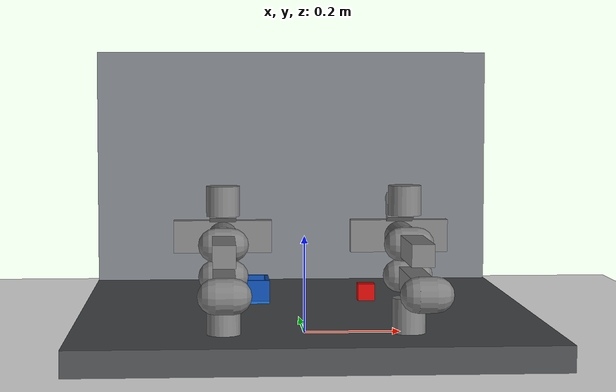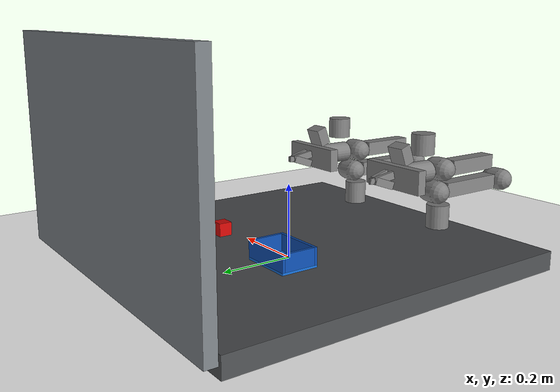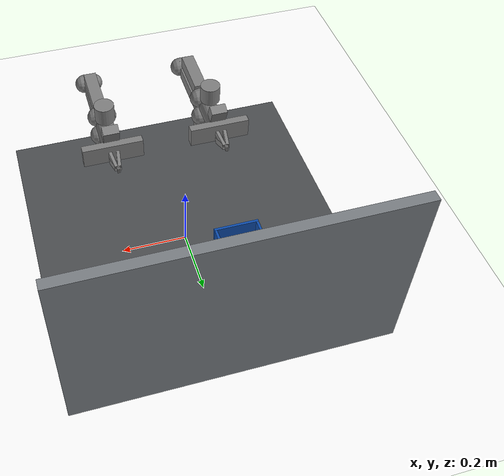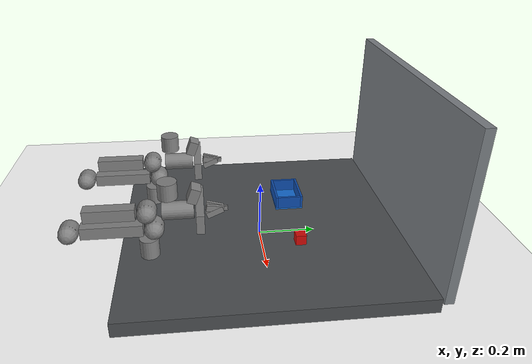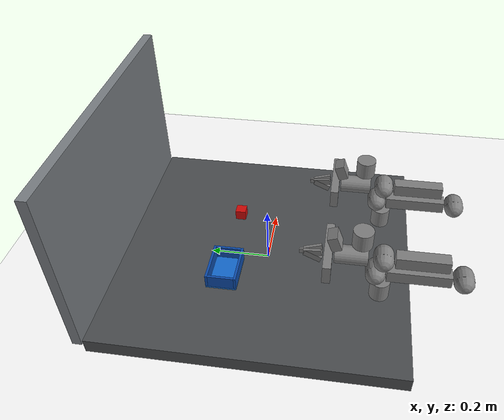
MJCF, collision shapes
<mujoco model="glassego block jamming wxai">
  <compiler angle="radian" meshdir="/home/huasan/trossen_arm_mujoco/trossen_arm_mujoco/assets/meshes/" texturedir="/home/huasan/trossen_arm_mujoco/trossen_arm_mujoco/assets/"/>

  <option integrator="implicitfast"/>

  <visual>
    <headlight diffuse="0.55 0.58 0.62" ambient="0.38 0.38 0.4" specular="0.12 0.12 0.12"/>
    <rgba haze="0.12 0.14 0.16 1"/>
    <quality shadowsize="4096"/>
  </visual>

  <size nkey="2"/>

  <statistic extent="0.8" center="0 -0.12 0.18"/>

  <default>
    <default class="left_main">
      <default class="left_visual">
        <geom type="mesh" contype="0" conaffinity="0" group="2" material="trossen_black"/>
      </default>
      <default class="left_collision">
        <geom type="cylinder" group="3"/>
      </default>
    </default>
    <default class="right_main">
      <default class="right_visual">
        <geom type="mesh" contype="0" conaffinity="0" group="2" material="trossen_black"/>
      </default>
      <default class="right_collision">
        <geom type="cylinder" group="3"/>
      </default>
    </default>
  </default>

  <asset>
    <texture type="skybox" colorspace="auto" name="task_skybox" builtin="gradient" rgb1="0.78 0.8 0.82" rgb2="0.3 0.32 0.35" width="512" height="3072"/>
    <texture type="2d" colorspace="auto" name="floor_grid" builtin="checker" mark="edge" rgb1="0.38 0.4 0.42" rgb2="0.3 0.32 0.34" markrgb="0.48 0.5 0.52" width="300" height="300"/>
    <texture type="2d" colorspace="auto" name="tabletop_gray_matte" builtin="checker" rgb1="0.28 0.29 0.30" rgb2="0.31 0.32 0.33" markrgb="0.32 0.33 0.34" width="256" height="256"/>
    <material name="floor_grid" texrepeat="4 4" texuniform="true" reflectance="0.08"/>
    <material name="task_table_gray_matte" texture="tabletop_gray_matte" texrepeat="12 12" texuniform="true" reflectance="0.01"/>
    <material name="backboard" rgba="0.48 0.5 0.52 1" reflectance="0.05"/>
    <material name="tray_blue" rgba="0.08 0.42 0.82 0.88" reflectance="0.06"/>
    <material name="tray_blue_rim" rgba="0.05 0.30 0.68 0.96" reflectance="0.05"/>
    <material name="block_red" rgba="0.82 0.035 0.025 1" reflectance="0.04"/>
    <material name="left_trossen_black" rgba="0.1 0.1 0.1 1"/>
    <material name="right_trossen_black" rgba="0.1 0.1 0.1 1"/>
    <mesh name="left_base_link" content_type="model/stl" file="base_link.stl"/>
    <mesh name="left_link_1" content_type="model/stl" file="link_1.stl"/>
    <mesh name="left_link_2" content_type="model/stl" file="link_2.stl"/>
    <mesh name="left_link_3" content_type="model/stl" file="link_3.stl"/>
    <mesh name="left_link_4" content_type="model/stl" file="link_4.stl"/>
    <mesh name="left_link_5" content_type="model/stl" file="link_5.stl"/>
    <mesh name="left_link_6" content_type="model/stl" file="link_6.stl"/>
    <mesh name="left_carriage_right" content_type="model/stl" file="carriage_right.stl"/>
    <mesh name="left_carriage_left" content_type="model/stl" file="carriage_left.stl"/>
    <mesh name="left_camera_mount_d405" content_type="model/stl" file="camera_mount_d405.stl"/>
    <mesh name="left_d405" content_type="model/stl" file="d405.stl" scale="0.001 0.001 0.001"/>
    <mesh name="left_gripper_left" content_type="model/stl" file="gripper_left.stl"/>
    <mesh name="left_gripper_right" content_type="model/stl" file="gripper_right.stl"/>
    <mesh name="right_base_link" file="base_link.stl"/>
    <mesh name="right_link_1" file="link_1.stl"/>
    <mesh name="right_link_2" file="link_2.stl"/>
    <mesh name="right_link_3" file="link_3.stl"/>
    <mesh name="right_link_4" content_type="model/stl" file="link_4.stl"/>
    <mesh name="right_link_5" content_type="model/stl" file="link_5.stl"/>
    <mesh name="right_link_6" content_type="model/stl" file="link_6.stl"/>
    <mesh name="right_carriage_right" file="carriage_right.stl"/>
    <mesh name="right_carriage_left" content_type="model/stl" file="carriage_left.stl"/>
    <mesh name="right_camera_mount_d405" content_type="model/stl" file="camera_mount_d405.stl"/>
    <mesh name="right_d405" content_type="model/stl" file="d405.stl" scale="0.001 0.001 0.001"/>
    <mesh name="right_gripper_left" content_type="model/stl" file="gripper_left.stl"/>
    <mesh name="right_gripper_right" file="gripper_right.stl"/>
  </asset>

  <worldbody>
    <geom name="floor" size="0 0 0.05" type="plane" material="floor_grid"/>
    <geom name="task_table" size="0.46 0.48 0.025" pos="0 0 0.025" type="box" friction="1.2 0.02 0.001" material="task_table_gray_matte"/>
    <geom name="task_backboard" size="0.46 0.015 0.28" pos="0 0.5 0.31" type="box" material="backboard" contype="0" conaffinity="0"/>
    <camera name="ego_rgbd" quat="0.86553 0.500857 0 0" pos="0 -0.7 0.5" fovy="60"/>
    <camera name="task_overview" quat="0.818156 0.468606 0.165609 0.289142" pos="0.58 -0.72 0.55" fovy="48"/>
    <light name="task_key_light" pos="0 -0.25 1.25" dir="0 0.12 -0.99" diffuse="0.75 0.72 0.66" specular="0.2 0.2 0.2" directional="false"/>
    <light name="task_fill_light" pos="-0.45 -0.05 0.75" dir="0.35 0.1 -0.92" diffuse="0.38 0.42 0.5" specular="0.05 0.05 0.05" directional="false"/>
    <light name="task_back_light" pos="0.25 0.38 0.9" dir="-0.2 -0.35 -0.91" diffuse="0.28 0.3 0.34" specular="0.04 0.04 0.04" directional="false"/>
    <frame name="left_wxai_mount">
      <body name="left_base_link" pos="-0.17 -0.38 0.06" quat="0.707107 0 0 0.707107" gravcomp="1">
        <inertial pos="-0.00014175 -5.228e-05 0.0317518" quat="0.503748 -0.50738 -0.49423 -0.49451" mass="0.459699" diaginertia="0.000213926 0.000416701 0.000448963"/>
        <geom class="left_visual" material="left_trossen_black" mesh="left_base_link"/>
        <geom class="left_collision" size="0.031 0.0325" pos="0 0 0.0325"/>
        <body name="left_link_1" pos="0 0 0.05725" gravcomp="1">
          <inertial pos="-0.00011075 0.00171176 0.0204459" quat="0.313955 0.305238 -0.643575 0.627752" mass="0.152704" diaginertia="0.000203432 0.000173907 8.3521e-05"/>
          <joint name="left_joint_0" range="-3.05433 3.05433" actuatorgravcomp="true" armature="0.032" frictionloss="0.1"/>
          <geom class="left_visual" material="left_trossen_black" mesh="left_link_1"/>
          <body name="left_link_2" pos="0.02 0 0.04625" gravcomp="1">
            <inertial pos="-0.131215 -0.00292583 0.00021345" quat="-0.00123582 0.706546 -0.00109575 0.707665" mass="1.15316" diaginertia="0.0179449 0.0173612 0.00102628"/>
            <joint name="left_joint_1" range="0 3.14159" actuatorgravcomp="true" armature="0.032" frictionloss="0.1" axis="0 1 0"/>
            <geom class="left_visual" material="left_trossen_black" mesh="left_link_2"/>
            <geom class="left_collision" size="0.031 0.015" quat="0.707107 0.707107 0 0" type="capsule"/>
            <geom class="left_collision" size="0.0975 0.02 0.02" pos="-0.131 0 0" type="box"/>
            <body name="left_link_3" pos="-0.264 0 0" gravcomp="1">
              <inertial pos="0.180836 -0.0009409 0.0555494" quat="0.0103901 0.669684 -0.0033175 0.742566" mass="0.686666" diaginertia="0.00566898 0.00547578 0.00059316"/>
              <joint name="left_joint_2" range="0 2.35619" actuatorgravcomp="true" armature="0.032" frictionloss="0.1" axis="0 -1 0"/>
              <geom class="left_visual" material="left_trossen_black" mesh="left_link_3"/>
              <geom class="left_collision" size="0.031 0.015" quat="0.707107 0.707107 0 0" type="capsule"/>
              <geom class="left_collision" size="0.08 0.02 0.02" pos="0.13 0 0.06" type="box"/>
              <body name="left_link_4" pos="0.245 0 0.06" gravcomp="1">
                <inertial pos="0.0579784 0.00027145 0.0588445" quat="0.948688 0.0346237 0.307828 0.0635164" mass="0.457899" diaginertia="0.000670827 0.000661455 0.000288648"/>
                <joint name="left_joint_3" range="-1.5708 1.5708" actuatorgravcomp="true" armature="0.0018" frictionloss="0.1" axis="0 -1 0"/>
                <geom class="left_visual" material="left_trossen_black" mesh="left_link_4"/>
                <geom class="left_collision" size="0.031 0.015" quat="0.707107 0.707107 0 0" type="capsule"/>
                <body name="left_link_5" pos="0.06775 0 0.0455" gravcomp="1">
                  <inertial pos="0.00412447 -1.138e-05 -0.0428318" quat="0.496144 0.502128 0.503595 0.498098" mass="0.366939" diaginertia="0.000320622 0.00026751 0.000189108"/>
                  <joint name="left_joint_4" range="-1.5708 1.5708" actuatorgravcomp="true" armature="0.0018" frictionloss="0.1" axis="0 0 -1"/>
                  <geom class="left_visual" material="left_trossen_black" mesh="left_link_5"/>
                  <geom class="left_collision" size="0.031 0.028" pos="0 0 0.03"/>
                  <body name="left_link_6" pos="0.02895 0 -0.0455" gravcomp="1">
                    <inertial pos="0.046841 0.00145133 0.00895674" quat="0.275854 0.291255 -0.691957 0.600225" mass="0.671874" diaginertia="0.00118316 0.00110863 0.00078309"/>
                    <joint name="left_joint_5" range="-3.14159 3.14159" actuatorgravcomp="true" armature="0.0018" frictionloss="0.1" axis="1 0 0"/>
                    <geom class="left_visual" material="left_trossen_black" mesh="left_link_6"/>
                    <geom class="left_collision" size="0.029 0.05" quat="0.707107 0 0.707107 0"/>
                    <geom class="left_collision" size="0.0125 0.094 0.031" pos="0.0685 0 0" type="box"/>
                    <geom class="left_visual" pos="0.012 0 0" quat="1 0 0 0" material="left_trossen_black" mesh="left_camera_mount_d405"/>
                    <geom class="left_collision" size="0.0155 0.025 0.025" pos="0.0513206 0 0.0569399" quat="0.984808 0 0.173648 0" type="box"/>
                    <geom class="left_visual" size="0.0115 0.021 0.021" pos="0.0513206 0 0.0569399" quat="0.984808 0 0.173648 0" type="box" material="left_trossen_black"/>
                    <site name="left_ee_site" size="0.001" pos="0.156 0 0"/>
                    <site name="left_camera_color_frame" quat="0.984808 0 0.173648 0" pos="0.05864 0.009 0.05427"/>
                    <camera name="left_cam" quat="0.579242 0.40556 -0.40556 -0.579242" pos="0.05864 0.009 0.05427" fovy="87"/>
                    <body name="left_carriage_right" pos="0.0865 -0.023 0" gravcomp="1">
                      <inertial pos="0.00169015 0.00592793 0.00201817" quat="-0.370973 0.740886 -0.0847721 0.553427" mass="0.081271" diaginertia="4.29565e-05 3.87081e-05 2.21528e-05"/>
                      <joint name="left_right_carriage_joint" type="slide" range="0 0.044" actuatorgravcomp="true" armature="0.1" frictionloss="0.1" axis="0 -1 0"/>
                      <geom class="left_visual" material="left_trossen_black" mesh="left_carriage_right"/>
                      <geom class="left_visual" material="left_trossen_black" mesh="left_gripper_right"/>
                      <geom class="left_collision" size="0.0275 0.005 0.01" pos="0.0286 0.01436 0.0037" quat="0.99257 -0.00451 0.10246 0.06547" type="box"/>
                      <geom class="left_collision" size="0.0275 0.005 0.01" pos="0.0285 0.01429 -0.00973" quat="0.98344 0.0133 -0.16893 0.06427" type="box"/>
                      <geom class="left_collision" size="0.00732 0.00214 0.00767" pos="0.0622 0.02083 -0.00105" type="box"/>
                    </body>
                    <body name="left_carriage_left" pos="0.0865 0.023 0" gravcomp="1">
                      <inertial pos="0.00169017 -0.00592796 -0.00365701" quat="-0.0382691 0.628022 -0.255101 0.734198" mass="0.081271" diaginertia="4.21112e-05 3.61943e-05 2.40003e-05"/>
                      <joint name="left_left_carriage_joint" type="slide" range="0 0.044" actuatorgravcomp="true" armature="0.1" frictionloss="0.1" axis="0 1 0"/>
                      <geom class="left_visual" material="left_trossen_black" mesh="left_carriage_left"/>
                      <geom class="left_visual" material="left_trossen_black" mesh="left_gripper_left"/>
                      <geom class="left_collision" size="0.0275 0.005 0.01" pos="0.0286 -0.01436 0.0037" quat="0.99257 0.00451 0.10246 -0.06547" type="box"/>
                      <geom class="left_collision" size="0.0275 0.005 0.01" pos="0.0285 -0.01429 -0.00973" quat="0.98344 -0.0133 -0.16893 -0.06427" type="box"/>
                      <geom class="left_collision" size="0.00732 0.00214 0.00767" pos="0.0622 -0.02083 -0.00105" type="box"/>
                    </body>
                  </body>
                </body>
              </body>
            </body>
          </body>
        </body>
      </body>
    </frame>
    <frame name="right_wxai_mount">
      <body name="right_base_link" pos="0.17 -0.38 0.06" quat="0.707107 0 0 0.707107" gravcomp="1">
        <inertial pos="-0.00014175 -5.228e-05 0.0317518" quat="0.503748 -0.50738 -0.49423 -0.49451" mass="0.459699" diaginertia="0.000213926 0.000416701 0.000448963"/>
        <geom class="right_visual" material="right_trossen_black" mesh="right_base_link"/>
        <geom class="right_collision" size="0.031 0.0325" pos="0 0 0.0325"/>
        <body name="right_link_1" pos="0 0 0.05725" gravcomp="1">
          <inertial pos="-0.00011075 0.00171176 0.0204459" quat="0.313955 0.305238 -0.643575 0.627752" mass="0.152704" diaginertia="0.000203432 0.000173907 8.3521e-05"/>
          <joint name="right_joint_0" range="-3.05433 3.05433" actuatorgravcomp="true" armature="0.032" frictionloss="0.1"/>
          <geom class="right_visual" material="right_trossen_black" mesh="right_link_1"/>
          <body name="right_link_2" pos="0.02 0 0.04625" gravcomp="1">
            <inertial pos="-0.131215 -0.00292583 0.00021345" quat="-0.00123582 0.706546 -0.00109575 0.707665" mass="1.15316" diaginertia="0.0179449 0.0173612 0.00102628"/>
            <joint name="right_joint_1" range="0 3.14159" actuatorgravcomp="true" armature="0.032" frictionloss="0.1" axis="0 1 0"/>
            <geom class="right_visual" material="right_trossen_black" mesh="right_link_2"/>
            <geom class="right_collision" size="0.031 0.015" quat="0.707107 0.707107 0 0" type="capsule"/>
            <geom class="right_collision" size="0.0975 0.02 0.02" pos="-0.131 0 0" type="box"/>
            <body name="right_link_3" pos="-0.264 0 0" gravcomp="1">
              <inertial pos="0.180836 -0.0009409 0.0555494" quat="0.0103901 0.669684 -0.0033175 0.742566" mass="0.686666" diaginertia="0.00566898 0.00547578 0.00059316"/>
              <joint name="right_joint_2" range="0 2.35619" actuatorgravcomp="true" armature="0.032" frictionloss="0.1" axis="0 -1 0"/>
              <geom class="right_visual" material="right_trossen_black" mesh="right_link_3"/>
              <geom class="right_collision" size="0.031 0.015" quat="0.707107 0.707107 0 0" type="capsule"/>
              <geom class="right_collision" size="0.08 0.02 0.02" pos="0.13 0 0.06" type="box"/>
              <body name="right_link_4" pos="0.245 0 0.06" gravcomp="1">
                <inertial pos="0.0579784 0.00027145 0.0588445" quat="0.948688 0.0346237 0.307828 0.0635164" mass="0.457899" diaginertia="0.000670827 0.000661455 0.000288648"/>
                <joint name="right_joint_3" range="-1.5708 1.5708" actuatorgravcomp="true" armature="0.0018" frictionloss="0.1" axis="0 -1 0"/>
                <geom class="right_visual" material="right_trossen_black" mesh="right_link_4"/>
                <geom class="right_collision" size="0.031 0.015" quat="0.707107 0.707107 0 0" type="capsule"/>
                <body name="right_link_5" pos="0.06775 0 0.0455" gravcomp="1">
                  <inertial pos="0.00412447 -1.138e-05 -0.0428318" quat="0.496144 0.502128 0.503595 0.498098" mass="0.366939" diaginertia="0.000320622 0.00026751 0.000189108"/>
                  <joint name="right_joint_4" range="-1.5708 1.5708" actuatorgravcomp="true" armature="0.0018" frictionloss="0.1" axis="0 0 -1"/>
                  <geom class="right_visual" material="right_trossen_black" mesh="right_link_5"/>
                  <geom class="right_collision" size="0.031 0.028" pos="0 0 0.03"/>
                  <body name="right_link_6" pos="0.02895 0 -0.0455" gravcomp="1">
                    <inertial pos="0.046841 0.00145133 0.00895674" quat="0.275854 0.291255 -0.691957 0.600225" mass="0.671874" diaginertia="0.00118316 0.00110863 0.00078309"/>
                    <joint name="right_joint_5" range="-3.14159 3.14159" actuatorgravcomp="true" armature="0.0018" frictionloss="0.1" axis="1 0 0"/>
                    <geom class="right_visual" material="right_trossen_black" mesh="right_link_6"/>
                    <geom class="right_collision" size="0.029 0.05" quat="0.707107 0 0.707107 0"/>
                    <geom class="right_collision" size="0.0125 0.094 0.031" pos="0.0685 0 0" type="box"/>
                    <geom class="right_visual" pos="0.012 0 0" quat="1 0 0 0" material="right_trossen_black" mesh="right_camera_mount_d405"/>
                    <geom class="right_collision" size="0.0155 0.025 0.025" pos="0.0513206 0 0.0569399" quat="0.984808 0 0.173648 0" type="box"/>
                    <geom class="right_visual" size="0.0115 0.021 0.021" pos="0.0513206 0 0.0569399" quat="0.984808 0 0.173648 0" type="box" material="right_trossen_black"/>
                    <site name="right_ee_site" size="0.001" pos="0.156 0 0"/>
                    <site name="right_camera_color_frame" quat="0.984808 0 0.173648 0" pos="0.05864 0.009 0.05427"/>
                    <camera name="right_cam" quat="0.579242 0.40556 -0.40556 -0.579242" pos="0.05864 0.009 0.05427" fovy="87"/>
                    <body name="right_carriage_right" pos="0.0865 -0.023 0" gravcomp="1">
                      <inertial pos="0.00169015 0.00592793 0.00201817" quat="-0.370973 0.740886 -0.0847721 0.553427" mass="0.081271" diaginertia="4.29565e-05 3.87081e-05 2.21528e-05"/>
                      <joint name="right_right_carriage_joint" type="slide" range="0 0.044" actuatorgravcomp="true" armature="0.1" frictionloss="0.1" axis="0 -1 0"/>
                      <geom class="right_visual" material="right_trossen_black" mesh="right_carriage_right"/>
                      <geom class="right_visual" material="right_trossen_black" mesh="right_gripper_right"/>
                      <geom class="right_collision" size="0.0275 0.005 0.01" pos="0.0286 0.01436 0.0037" quat="0.99257 -0.00451 0.10246 0.06547" type="box"/>
                      <geom class="right_collision" size="0.0275 0.005 0.01" pos="0.0285 0.01429 -0.00973" quat="0.98344 0.0133 -0.16893 0.06427" type="box"/>
                      <geom class="right_collision" size="0.00732 0.00214 0.00767" pos="0.0622 0.02083 -0.00105" type="box"/>
                    </body>
                    <body name="right_carriage_left" pos="0.0865 0.023 0" gravcomp="1">
                      <inertial pos="0.00169017 -0.00592796 -0.00365701" quat="-0.0382691 0.628022 -0.255101 0.734198" mass="0.081271" diaginertia="4.21112e-05 3.61943e-05 2.40003e-05"/>
                      <joint name="right_left_carriage_joint" type="slide" range="0 0.044" actuatorgravcomp="true" armature="0.1" frictionloss="0.1" axis="0 1 0"/>
                      <geom class="right_visual" material="right_trossen_black" mesh="right_carriage_left"/>
                      <geom class="right_visual" material="right_trossen_black" mesh="right_gripper_left"/>
                      <geom class="right_collision" size="0.0275 0.005 0.01" pos="0.0286 -0.01436 0.0037" quat="0.99257 0.00451 0.10246 -0.06547" type="box"/>
                      <geom class="right_collision" size="0.0275 0.005 0.01" pos="0.0285 -0.01429 -0.00973" quat="0.98344 -0.0133 -0.16893 -0.06427" type="box"/>
                      <geom class="right_collision" size="0.00732 0.00214 0.00767" pos="0.0622 -0.02083 -0.00105" type="box"/>
                    </body>
                  </body>
                </body>
              </body>
            </body>
          </body>
        </body>
      </body>
    </frame>
    <body name="target_box" pos="-0.14 0.12 0.075">
      <geom name="target_box_geom" size="0.07 0.05 0.025" type="box" rgba="0 0 0 0" contype="0" conaffinity="0"/>
      <geom name="target_tray_base" size="0.07 0.05 0.003" pos="0 0 -0.022" type="box" friction="1.4 0.02 0.001" material="tray_blue"/>
      <geom name="target_tray_front" size="0.07 0.004 0.022" pos="0 -0.046 0.003" type="box" material="tray_blue_rim"/>
      <geom name="target_tray_back" size="0.07 0.004 0.022" pos="0 0.046 0.003" type="box" material="tray_blue_rim"/>
      <geom name="target_tray_left" size="0.004 0.042 0.022" pos="-0.066 0 0.003" type="box" material="tray_blue_rim"/>
      <geom name="target_tray_right" size="0.004 0.042 0.022" pos="0.066 0 0.003" type="box" material="tray_blue_rim"/>
      <site name="target_site" size="0.008" pos="0 0 0.025" rgba="0 0 0 0"/>
    </body>
    <body name="block" pos="0.14 0.12 0.068">
      <joint name="block_freejoint" type="free"/>
      <geom name="block_geom" size="0.018 0.018 0.018" type="box" condim="4" friction="2 0.03 0.001" solref="0.01" mass="0.03" material="block_red"/>
      <site name="block_grasp_site" size="0.006" rgba="1 1 1 0.6"/>
    </body>
  </worldbody>

  <equality>
    <joint joint1="left_right_carriage_joint" joint2="left_left_carriage_joint"/>
    <joint joint1="right_right_carriage_joint" joint2="right_left_carriage_joint"/>
  </equality>

  <actuator>
    <general name="left_joint_0" joint="left_joint_0" ctrlrange="-3.05433 3.05433" forcerange="-27 27" biastype="affine" gainprm="200" biasprm="0 -200 -10"/>
    <general name="left_joint_1" joint="left_joint_1" ctrlrange="0 3.14159" forcerange="-27 27" biastype="affine" gainprm="200" biasprm="0 -200 -10"/>
    <general name="left_joint_2" joint="left_joint_2" ctrlrange="0 2.35619" forcerange="-27 27" biastype="affine" gainprm="200" biasprm="0 -200 -10"/>
    <general name="left_joint_3" joint="left_joint_3" ctrlrange="-1.5708 1.5708" forcerange="-7 7" biastype="affine" gainprm="100" biasprm="0 -100 -5"/>
    <general name="left_joint_4" joint="left_joint_4" ctrlrange="-1.5708 1.5708" forcerange="-7 7" biastype="affine" gainprm="50" biasprm="0 -50 -5"/>
    <general name="left_joint_5" joint="left_joint_5" ctrlrange="-3.14159 3.14159" forcerange="-7 7" biastype="affine" gainprm="50" biasprm="0 -50 -5"/>
    <general name="left_left_gripper" joint="left_left_carriage_joint" ctrlrange="0 0.044" forcerange="-400 400" biastype="affine" gainprm="1000" biasprm="0 -1000 -50"/>
    <general name="right_joint_0" joint="right_joint_0" ctrlrange="-3.05433 3.05433" forcerange="-27 27" biastype="affine" gainprm="200" biasprm="0 -200 -10"/>
    <general name="right_joint_1" joint="right_joint_1" ctrlrange="0 3.14159" forcerange="-27 27" biastype="affine" gainprm="200" biasprm="0 -200 -10"/>
    <general name="right_joint_2" joint="right_joint_2" ctrlrange="0 2.35619" forcerange="-27 27" biastype="affine" gainprm="200" biasprm="0 -200 -10"/>
    <general name="right_joint_3" joint="right_joint_3" ctrlrange="-1.5708 1.5708" forcerange="-7 7" biastype="affine" gainprm="100" biasprm="0 -100 -5"/>
    <general name="right_joint_4" joint="right_joint_4" ctrlrange="-1.5708 1.5708" forcerange="-7 7" biastype="affine" gainprm="50" biasprm="0 -50 -5"/>
    <general name="right_joint_5" joint="right_joint_5" ctrlrange="-3.14159 3.14159" forcerange="-7 7" biastype="affine" gainprm="50" biasprm="0 -50 -5"/>
    <general name="right_left_gripper" joint="right_left_carriage_joint" ctrlrange="0 0.044" forcerange="-400 400" biastype="affine" gainprm="1000" biasprm="0 -1000 -50"/>
  </actuator>

  <keyframe>
    <key name="left_home"/>
    <key name="right_home"/>
  </keyframe>
</mujoco>
